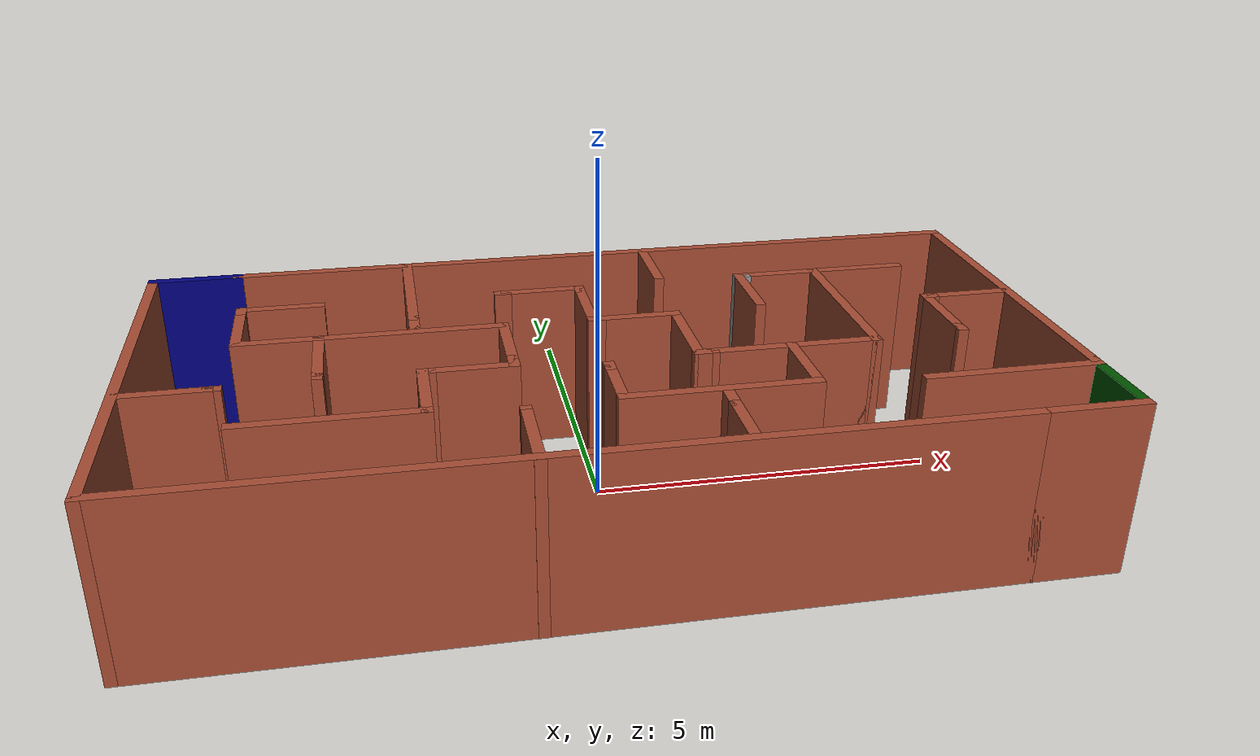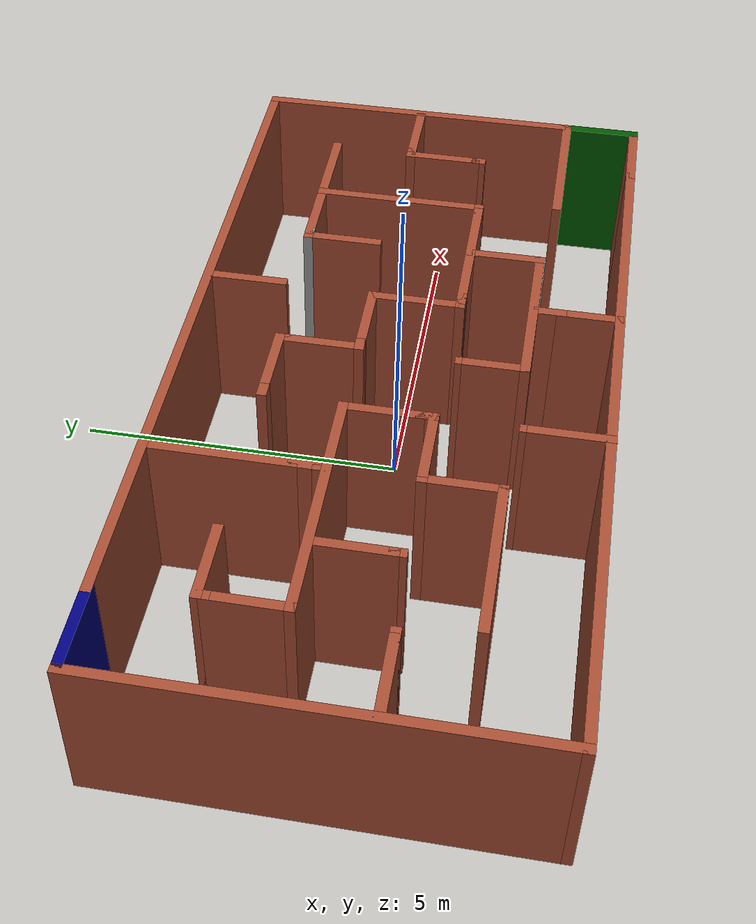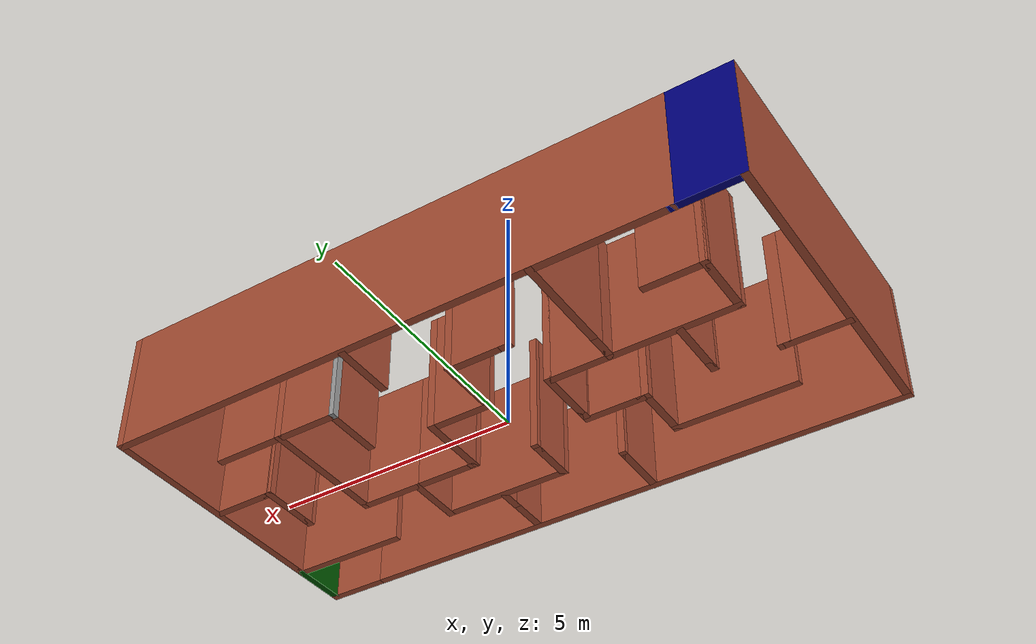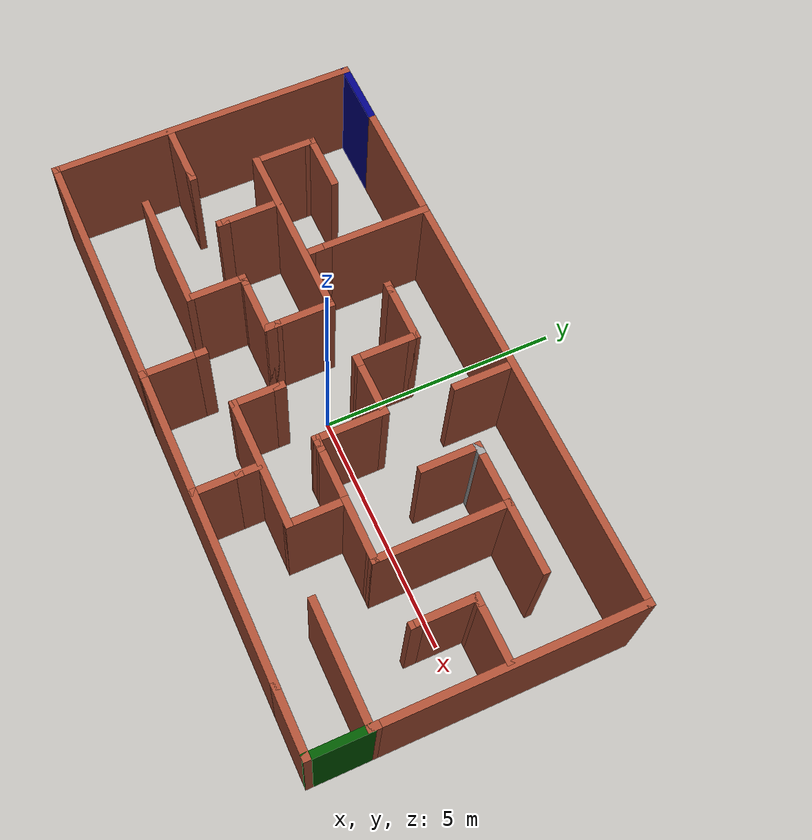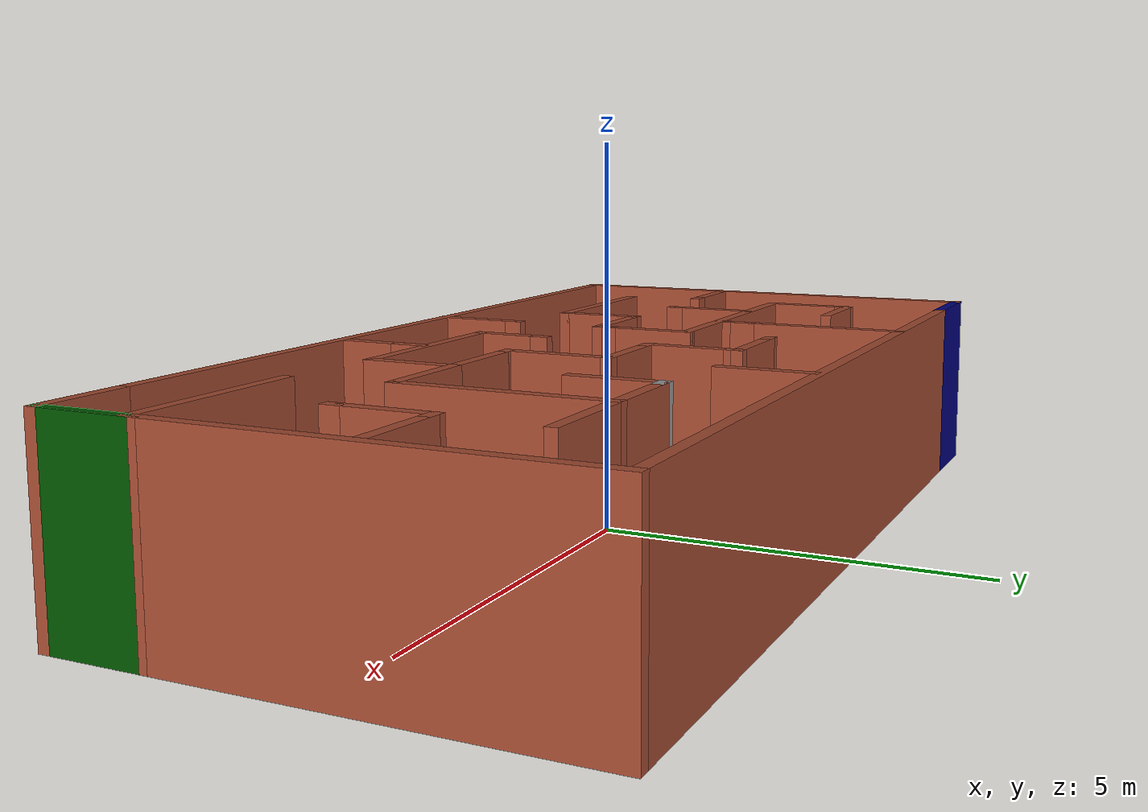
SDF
<?xml version='1.0'?>
<sdf version='1.6'>
  <model name='maze_simple'>
    <pose frame=''>0.016982 0.008977 0 0 -0 0</pose>
    <link name='Wall_100'>
      <collision name='Wall_100_Collision'>
        <geometry>
          <box>
            <size>0.25 0.15 2.5</size>
          </box>
        </geometry>
        <pose frame=''>0 0 1.25 0 -0 0</pose>
      </collision>
      <visual name='Wall_100_Visual'>
        <pose frame=''>0 0 1.25 0 -0 0</pose>
        <geometry>
          <box>
            <size>0.25 0.15 2.5</size>
          </box>
        </geometry>
        <material>
          <script>
            <uri>file://media/materials/scripts/gazebo.material</uri>
            <name>Gazebo/Bricks</name>
          </script>
          <ambient>1 1 1 1</ambient>
        </material>
      </visual>
      <pose frame=''>-1.13318 1.78039 0 0 -0 3.14159</pose>
    </link>
    <link name='Wall_102'>
      <collision name='Wall_102_Collision'>
        <geometry>
          <box>
            <size>1.25 0.15 2.5</size>
          </box>
        </geometry>
        <pose frame=''>0 0 1.25 0 -0 0</pose>
      </collision>
      <visual name='Wall_102_Visual'>
        <pose frame=''>0 0 1.25 0 -0 0</pose>
        <geometry>
          <box>
            <size>1.25 0.15 2.5</size>
          </box>
        </geometry>
        <material>
          <script>
            <uri>file://media/materials/scripts/gazebo.material</uri>
            <name>Gazebo/Bricks</name>
          </script>
          <ambient>1 1 1 1</ambient>
        </material>
      </visual>
      <pose frame=''>3.06682 -0.769606 0 0 -0 0</pose>
    </link>
    <link name='Wall_103'>
      <collision name='Wall_103_Collision'>
        <geometry>
          <box>
            <size>0.25 0.15 2.5</size>
          </box>
        </geometry>
        <pose frame=''>0 0 1.25 0 -0 0</pose>
      </collision>
      <visual name='Wall_103_Visual'>
        <pose frame=''>0 0 1.25 0 -0 0</pose>
        <geometry>
          <box>
            <size>0.25 0.15 2.5</size>
          </box>
        </geometry>
        <material>
          <script>
            <uri>file://media/materials/scripts/gazebo.material</uri>
            <name>Gazebo/Bricks</name>
          </script>
          <ambient>1 1 1 1</ambient>
        </material>
      </visual>
      <pose frame=''>3.66682 -0.769606 0 0 -0 0</pose>
    </link>
    <link name='Wall_104'>
      <collision name='Wall_104_Collision'>
        <geometry>
          <box>
            <size>2.75 0.15 2.5</size>
          </box>
        </geometry>
        <pose frame=''>0 0 1.25 0 -0 0</pose>
      </collision>
      <visual name='Wall_104_Visual'>
        <pose frame=''>0 0 1.25 0 -0 0</pose>
        <geometry>
          <box>
            <size>2.75 0.15 2.5</size>
          </box>
        </geometry>
        <material>
          <script>
            <uri>file://media/materials/scripts/gazebo.material</uri>
            <name>Gazebo/Bricks</name>
          </script>
          <ambient>1 1 1 1</ambient>
        </material>
      </visual>
      <pose frame=''>3.71682 0.530394 0 0 -0 1.5708</pose>
    </link>
    <link name='Wall_105'>
      <collision name='Wall_105_Collision'>
        <geometry>
          <box>
            <size>1.25 0.15 2.5</size>
          </box>
        </geometry>
        <pose frame=''>0 0 1.25 0 -0 0</pose>
      </collision>
      <visual name='Wall_105_Visual'>
        <pose frame=''>0 0 1.25 0 -0 0</pose>
        <geometry>
          <box>
            <size>1.25 0.15 2.5</size>
          </box>
        </geometry>
        <material>
          <script>
            <uri>file://media/materials/scripts/gazebo.material</uri>
            <name>Gazebo/Bricks</name>
          </script>
          <ambient>1 1 1 1</ambient>
        </material>
      </visual>
      <pose frame=''>3.16682 1.83039 0 0 -0 3.14159</pose>
    </link>
    <link name='Wall_106'>
      <collision name='Wall_106_Collision'>
        <geometry>
          <box>
            <size>0.25 0.15 2.5</size>
          </box>
        </geometry>
        <pose frame=''>0 0 1.25 0 -0 0</pose>
      </collision>
      <visual name='Wall_106_Visual'>
        <pose frame=''>0 0 1.25 0 -0 0</pose>
        <geometry>
          <box>
            <size>0.25 0.15 2.5</size>
          </box>
        </geometry>
        <material>
          <script>
            <uri>file://media/materials/scripts/gazebo.material</uri>
            <name>Gazebo/Grey</name>
          </script>
          <ambient>1 1 1 1</ambient>
        </material>
      </visual>
      <pose frame=''>2.56682 1.83039 0 0 -0 3.14159</pose>
    </link>
    <link name='Wall_107'>
      <collision name='Wall_107_Collision'>
        <geometry>
          <box>
            <size>1.25 0.15 2.5</size>
          </box>
        </geometry>
        <pose frame=''>0 0 1.25 0 -0 0</pose>
      </collision>
      <visual name='Wall_107_Visual'>
        <pose frame=''>0 0 1.25 0 -0 0</pose>
        <geometry>
          <box>
            <size>1.25 0.15 2.5</size>
          </box>
        </geometry>
        <material>
          <script>
            <uri>file://media/materials/scripts/gazebo.material</uri>
            <name>Gazebo/Bricks</name>
          </script>
          <ambient>1 1 1 1</ambient>
        </material>
      </visual>
      <pose frame=''>2.51682 1.28039 0 0 0 -1.5708</pose>
    </link>
    <link name='Wall_109'>
      <collision name='Wall_109_Collision'>
        <geometry>
          <box>
            <size>1.5 0.15 2.5</size>
          </box>
        </geometry>
        <pose frame=''>0 0 1.25 0 -0 0</pose>
      </collision>
      <visual name='Wall_109_Visual'>
        <pose frame=''>0 0 1.25 0 -0 0</pose>
        <geometry>
          <box>
            <size>1.5 0.15 2.5</size>
          </box>
        </geometry>
        <material>
          <script>
            <uri>file://media/materials/scripts/gazebo.material</uri>
            <name>Gazebo/Bricks</name>
          </script>
          <ambient>1 1 1 1</ambient>
        </material>
      </visual>
      <pose frame=''>4.39182 1.83039 0 0 -0 0</pose>
    </link>
    <link name='Wall_111'>
      <collision name='Wall_111_Collision'>
        <geometry>
          <box>
            <size>1.25 0.15 2.5</size>
          </box>
        </geometry>
        <pose frame=''>0 0 1.25 0 -0 0</pose>
      </collision>
      <visual name='Wall_111_Visual'>
        <pose frame=''>0 0 1.25 0 -0 0</pose>
        <geometry>
          <box>
            <size>1.25 0.15 2.5</size>
          </box>
        </geometry>
        <material>
          <script>
            <uri>file://media/materials/scripts/gazebo.material</uri>
            <name>Gazebo/Bricks</name>
          </script>
          <ambient>1 1 1 1</ambient>
        </material>
      </visual>
      <pose frame=''>5.67175 0.542885 0 0 -0 3.14159</pose>
    </link>
    <link name='Wall_112'>
      <collision name='Wall_112_Collision'>
        <geometry>
          <box>
            <size>0.25 0.15 2.5</size>
          </box>
        </geometry>
        <pose frame=''>0 0 1.25 0 -0 0</pose>
      </collision>
      <visual name='Wall_112_Visual'>
        <pose frame=''>0 0 1.25 0 -0 0</pose>
        <geometry>
          <box>
            <size>0.25 0.15 2.5</size>
          </box>
        </geometry>
        <material>
          <script>
            <uri>file://media/materials/scripts/gazebo.material</uri>
            <name>Gazebo/Bricks</name>
          </script>
          <ambient>1 1 1 1</ambient>
        </material>
      </visual>
      <pose frame=''>5.07175 0.542885 0 0 -0 3.14159</pose>
    </link>
    <link name='Wall_113'>
      <collision name='Wall_113_Collision'>
        <geometry>
          <box>
            <size>1.25 0.15 2.5</size>
          </box>
        </geometry>
        <pose frame=''>0 0 1.25 0 -0 0</pose>
      </collision>
      <visual name='Wall_113_Visual'>
        <pose frame=''>0 0 1.25 0 -0 0</pose>
        <geometry>
          <box>
            <size>1.25 0.15 2.5</size>
          </box>
        </geometry>
        <material>
          <script>
            <uri>file://media/materials/scripts/gazebo.material</uri>
            <name>Gazebo/Bricks</name>
          </script>
          <ambient>1 1 1 1</ambient>
        </material>
      </visual>
      <pose frame=''>5.02175 -0.007115 0 0 0 -1.5708</pose>
    </link>
    <link name='Wall_114'>
      <collision name='Wall_114_Collision'>
        <geometry>
          <box>
            <size>0.25 0.15 2.5</size>
          </box>
        </geometry>
        <pose frame=''>0 0 1.25 0 -0 0</pose>
      </collision>
      <visual name='Wall_114_Visual'>
        <pose frame=''>0 0 1.25 0 -0 0</pose>
        <geometry>
          <box>
            <size>0.25 0.15 2.5</size>
          </box>
        </geometry>
        <material>
          <script>
            <uri>file://media/materials/scripts/gazebo.material</uri>
            <name>Gazebo/Bricks</name>
          </script>
          <ambient>1 1 1 1</ambient>
        </material>
      </visual>
      <pose frame=''>5.02175 -0.607115 0 0 0 -1.5708</pose>
    </link>
    <link name='Wall_140'>
      <collision name='Wall_140_Collision'>
        <geometry>
          <box>
            <size>6.5 0.15 2.5</size>
          </box>
        </geometry>
        <pose frame=''>0 0 1.25 0 -0 0</pose>
      </collision>
      <visual name='Wall_140_Visual'>
        <pose frame=''>0 0 1.25 0 -0 0</pose>
        <geometry>
          <box>
            <size>6.5 0.15 2.5</size>
          </box>
        </geometry>
        <material>
          <script>
            <uri>file://media/materials/scripts/gazebo.material</uri>
            <name>Gazebo/Bricks</name>
          </script>
          <ambient>1 1 1 1</ambient>
        </material>
      </visual>
      <pose frame=''>-6.3 0.002046 0 0 -0 1.5708</pose>
    </link>
    <link name='Wall_142'>
      <collision name='Wall_142_Collision'>
        <geometry>
          <box>
            <size>1.25 0.15 2.5</size>
          </box>
        </geometry>
        <pose frame=''>0 0 1.25 0 -0 0</pose>
      </collision>
      <visual name='Wall_142_Visual'>
        <pose frame=''>0 0 1.25 0 -0 0</pose>
        <geometry>
          <box>
            <size>1.25 0.15 2.5</size>
          </box>
        </geometry>
        <material>
          <script>
            <uri>file://media/materials/scripts/gazebo.material</uri>
            <name>Gazebo/Bricks</name>
          </script>
          <ambient>1 1 1 1</ambient>
        </material>
      </visual>
      <pose frame=''>-1.26436 -2.62705 0 0 -0 1.5708</pose>
    </link>
    <link name='Wall_143'>
      <collision name='Wall_143_Collision'>
        <geometry>
          <box>
            <size>0.25 0.15 2.5</size>
          </box>
        </geometry>
        <pose frame=''>0 0 1.25 0 -0 0</pose>
      </collision>
      <visual name='Wall_143_Visual'>
        <pose frame=''>0 0 1.25 0 -0 0</pose>
        <geometry>
          <box>
            <size>0.25 0.15 2.5</size>
          </box>
        </geometry>
        <material>
          <script>
            <uri>file://media/materials/scripts/gazebo.material</uri>
            <name>Gazebo/Bricks</name>
          </script>
          <ambient>1 1 1 1</ambient>
        </material>
      </visual>
      <pose frame=''>-1.26436 -2.02705 0 0 -0 1.5708</pose>
    </link>
    <link name='Wall_145'>
      <collision name='Wall_145_Collision'>
        <geometry>
          <box>
            <size>1 0.15 2.5</size>
          </box>
        </geometry>
        <pose frame=''>0 0 1.25 0 -0 0</pose>
      </collision>
      <visual name='Wall_145_Visual'>
        <pose frame=''>0 0 1.25 0 -0 0</pose>
        <geometry>
          <box>
            <size>1 0.15 2.5</size>
          </box>
        </geometry>
        <material>
          <script>
            <uri>file://media/materials/scripts/gazebo.material</uri>
            <name>Gazebo/Bricks</name>
          </script>
          <ambient>1 1 1 1</ambient>
        </material>
      </visual>
      <pose frame=''>1.29548 -2.72328 0 0 -0 1.5708</pose>
    </link>
    <link name='Wall_147'>
      <collision name='Wall_147_Collision'>
        <geometry>
          <box>
            <size>0.5 0.15 2.5</size>
          </box>
        </geometry>
        <pose frame=''>0 0 1.25 0 -0 0</pose>
      </collision>
      <visual name='Wall_147_Visual'>
        <pose frame=''>0 0 1.25 0 -0 0</pose>
        <geometry>
          <box>
            <size>0.5 0.15 2.5</size>
          </box>
        </geometry>
        <material>
          <script>
            <uri>file://media/materials/scripts/gazebo.material</uri>
            <name>Gazebo/Bricks</name>
          </script>
          <ambient>1 1 1 1</ambient>
        </material>
      </visual>
      <pose frame=''>1.29548 -2.12328 0 0 -0 1.5708</pose>
    </link>
    <link name='Wall_149'>
      <collision name='Wall_149_Collision'>
        <geometry>
          <box>
            <size>2.7 0.15 2.5</size>
          </box>
        </geometry>
        <pose frame=''>0 0 1.25 0 -0 0</pose>
      </collision>
      <visual name='Wall_149_Visual'>
        <pose frame=''>0 0 1.25 0 -0 0</pose>
        <geometry>
          <box>
            <size>2.7 0.15 2.5</size>
          </box>
        </geometry>
        <material>
          <script>
            <uri>file://media/materials/scripts/gazebo.material</uri>
            <name>Gazebo/Bricks</name>
          </script>
          <ambient>1 1 1 1</ambient>
        </material>
      </visual>
      <pose frame=''>1.24182 -1.86961 0 0 -0 0</pose>
    </link>
    <link name='Wall_151'>
      <collision name='Wall_151_Collision'>
        <geometry>
          <box>
            <size>2.25 0.15 2.5</size>
          </box>
        </geometry>
        <pose frame=''>0 0 1.25 0 -0 0</pose>
      </collision>
      <visual name='Wall_151_Visual'>
        <pose frame=''>0 0 1.25 0 -0 0</pose>
        <geometry>
          <box>
            <size>2.25 0.15 2.5</size>
          </box>
        </geometry>
        <material>
          <script>
            <uri>file://media/materials/scripts/gazebo.material</uri>
            <name>Gazebo/Bricks</name>
          </script>
          <ambient>1 1 1 1</ambient>
        </material>
      </visual>
      <pose frame=''>-2.48197 2.11983 0 0 0 -1.5708</pose>
    </link>
    <link name='Wall_153'>
      <collision name='Wall_153_Collision'>
        <geometry>
          <box>
            <size>0.5 0.15 2.5</size>
          </box>
        </geometry>
        <pose frame=''>0 0 1.25 0 -0 0</pose>
      </collision>
      <visual name='Wall_153_Visual'>
        <pose frame=''>0 0 1.25 0 -0 0</pose>
        <geometry>
          <box>
            <size>0.5 0.15 2.5</size>
          </box>
        </geometry>
        <material>
          <script>
            <uri>file://media/materials/scripts/gazebo.material</uri>
            <name>Gazebo/Bricks</name>
          </script>
          <ambient>1 1 1 1</ambient>
        </material>
      </visual>
      <pose frame=''>-2.48197 0.894825 0 0 0 -1.5708</pose>
    </link>
    <link name='Wall_154'>
      <collision name='Wall_154_Collision'>
        <geometry>
          <box>
            <size>0.25 0.15 2.5</size>
          </box>
        </geometry>
        <pose frame=''>0 0 1.25 0 -0 0</pose>
      </collision>
      <visual name='Wall_154_Visual'>
        <pose frame=''>0 0 1.25 0 -0 0</pose>
        <geometry>
          <box>
            <size>0.25 0.15 2.5</size>
          </box>
        </geometry>
        <material>
          <script>
            <uri>file://media/materials/scripts/gazebo.material</uri>
            <name>Gazebo/Bricks</name>
          </script>
          <ambient>1 1 1 1</ambient>
        </material>
      </visual>
      <pose frame=''>-2.48197 0.669825 0 0 0 -1.5708</pose>
    </link>
    <link name='Wall_156'>
      <collision name='Wall_156_Collision'>
        <geometry>
          <box>
            <size>3.8 0.15 2.5</size>
          </box>
        </geometry>
        <pose frame=''>0 0 1.25 0 -0 0</pose>
      </collision>
      <visual name='Wall_156_Visual'>
        <pose frame=''>0 0 1.25 0 -0 0</pose>
        <geometry>
          <box>
            <size>3.8 0.15 2.5</size>
          </box>
        </geometry>
        <material>
          <script>
            <uri>file://media/materials/scripts/gazebo.material</uri>
            <name>Gazebo/Bricks</name>
          </script>
          <ambient>1 1 1 1</ambient>
        </material>
      </visual>
      <pose frame=''>-3.07995 0.598486 0 0 -0 0</pose>
    </link>
    <link name='Wall_160'>
      <collision name='Wall_160_Collision'>
        <geometry>
          <box>
            <size>1.25 0.15 2.5</size>
          </box>
        </geometry>
        <pose frame=''>0 0 1.25 0 -0 0</pose>
      </collision>
      <visual name='Wall_160_Visual'>
        <pose frame=''>0 0 1.25 0 -0 0</pose>
        <geometry>
          <box>
            <size>1.25 0.15 2.5</size>
          </box>
        </geometry>
        <material>
          <script>
            <uri>file://media/materials/scripts/gazebo.material</uri>
            <name>Gazebo/Bricks</name>
          </script>
          <ambient>1 1 1 1</ambient>
        </material>
      </visual>
      <pose frame=''>1.28589 2.55271 0 0 0 -1.5708</pose>
    </link>
    <link name='Wall_162'>
      <collision name='Wall_162_Collision'>
        <geometry>
          <box>
            <size>11.5 0.15 2.5</size>
          </box>
        </geometry>
        <pose frame=''>0 0 1.25 0 -0 0</pose>
      </collision>
      <visual name='Wall_162_Visual'>
        <pose frame=''>0 0 1.25 0 -0 0</pose>
        <geometry>
          <box>
            <size>11.5 0.15 2.5</size>
          </box>
        </geometry>
        <material>
          <script>
            <uri>file://media/materials/scripts/gazebo.material</uri>
            <name>Gazebo/Bricks</name>
          </script>
          <ambient>1 1 1 1</ambient>
        </material>
      </visual>
      <pose frame=''>0.625 3.17705 0 0 -0 3.14159</pose>
    </link>
    <link name='Wall_163'>
      <collision name='Wall_163_Collision'>
        <geometry>
          <box>
            <size>1.4 0.15 2.5</size>
          </box>
        </geometry>
        <pose frame=''>0 0 1.25 0 -0 0</pose>
      </collision>
      <visual name='Wall_163_Visual'>
        <pose frame=''>0 0 1.25 0 -0 0</pose>
        <geometry>
          <box>
            <size>1.4 0.15 2.5</size>
          </box>
        </geometry>
        <material>
          <script>
            <uri>file://media/materials/scripts/gazebo.material</uri>
            <name>Gazebo/Grey</name>
          </script>
          <ambient>0 0 0.498039 1</ambient>
        </material>
      </visual>
      <pose frame=''>-5.675 3.17705 0 0 -0 3.14159</pose>
    </link>
    <link name='Wall_165'>
      <collision name='Wall_165_Collision'>
        <geometry>
          <box>
            <size>11.5 0.15 2.5</size>
          </box>
        </geometry>
        <pose frame=''>0 0 1.25 0 -0 0</pose>
      </collision>
      <visual name='Wall_165_Visual'>
        <pose frame=''>0 0 1.25 0 -0 0</pose>
        <geometry>
          <box>
            <size>11.5 0.15 2.5</size>
          </box>
        </geometry>
        <material>
          <script>
            <uri>file://media/materials/scripts/gazebo.material</uri>
            <name>Gazebo/Bricks</name>
          </script>
          <ambient>1 1 1 1</ambient>
        </material>
      </visual>
      <pose frame=''>-0.625 -3.17295 0 0 -0 0</pose>
    </link>
    <link name='Wall_166'>
      <collision name='Wall_166_Collision'>
        <geometry>
          <box>
            <size>1.4 0.15 2.5</size>
          </box>
        </geometry>
        <pose frame=''>0 0 1.25 0 -0 0</pose>
      </collision>
      <visual name='Wall_166_Visual'>
        <pose frame=''>0 0 1.25 0 -0 0</pose>
        <geometry>
          <box>
            <size>1.4 0.15 2.5</size>
          </box>
        </geometry>
        <material>
          <script>
            <uri>file://media/materials/scripts/gazebo.material</uri>
            <name>Gazebo/Bricks</name>
          </script>
          <ambient>1 1 1 1</ambient>
        </material>
      </visual>
      <pose frame=''>5.675 -3.17295 0 0 -0 0</pose>
    </link>
    <link name='Wall_172'>
      <collision name='Wall_172_Collision'>
        <geometry>
          <box>
            <size>5.25 0.15 2.5</size>
          </box>
        </geometry>
        <pose frame=''>0 0 1.25 0 -0 0</pose>
      </collision>
      <visual name='Wall_172_Visual'>
        <pose frame=''>0 0 1.25 0 -0 0</pose>
        <geometry>
          <box>
            <size>5.25 0.15 2.5</size>
          </box>
        </geometry>
        <material>
          <script>
            <uri>file://media/materials/scripts/gazebo.material</uri>
            <name>Gazebo/Bricks</name>
          </script>
          <ambient>1 1 1 1</ambient>
        </material>
      </visual>
      <pose frame=''>6.3 0.627046 0 0 0 -1.5708</pose>
    </link>
    <link name='Wall_173'>
      <collision name='Wall_173_Collision'>
        <geometry>
          <box>
            <size>0.25 0.15 2.5</size>
          </box>
        </geometry>
        <pose frame=''>0 0 1.25 0 -0 0</pose>
      </collision>
      <visual name='Wall_173_Visual'>
        <pose frame=''>0 0 1.25 0 -0 0</pose>
        <geometry>
          <box>
            <size>0.25 0.15 2.5</size>
          </box>
        </geometry>
        <material>
          <script>
            <uri>file://media/materials/scripts/gazebo.material</uri>
            <name>Gazebo/Bricks</name>
          </script>
          <ambient>1 1 1 1</ambient>
        </material>
      </visual>
      <pose frame=''>6.3 -1.97295 0 0 0 -1.5708</pose>
    </link>
    <link name='Wall_174'>
      <collision name='Wall_174_Collision'>
        <geometry>
          <box>
            <size>1.3 0.15 2.5</size>
          </box>
        </geometry>
        <pose frame=''>0 0 1.25 0 -0 0</pose>
      </collision>
      <visual name='Wall_174_Visual'>
        <pose frame=''>0 0 1.25 0 -0 0</pose>
        <geometry>
          <box>
            <size>1.3 0.15 2.5</size>
          </box>
        </geometry>
        <material>
          <script>
            <uri>file://media/materials/scripts/gazebo.material</uri>
            <name>Gazebo/Grey</name>
          </script>
          <ambient>0 0.333333 0 1</ambient>
        </material>
      </visual>
      <pose frame=''>6.3 -2.59795 0 0 0 -1.5708</pose>
    </link>
    <link name='Wall_176'>
      <collision name='Wall_176_Collision'>
        <geometry>
          <box>
            <size>2.5 0.15 2.5</size>
          </box>
        </geometry>
        <pose frame=''>0 0 1.25 0 -0 0</pose>
      </collision>
      <visual name='Wall_176_Visual'>
        <pose frame=''>0 0 1.25 0 -0 0</pose>
        <geometry>
          <box>
            <size>2.5 0.15 2.5</size>
          </box>
        </geometry>
        <material>
          <script>
            <uri>file://media/materials/scripts/gazebo.material</uri>
            <name>Gazebo/Bricks</name>
          </script>
          <ambient>1 1 1 1</ambient>
        </material>
      </visual>
      <pose frame=''>5.125 -2.02295 0 0 -0 3.14159</pose>
    </link>
    <link name='Wall_52'>
      <collision name='Wall_52_Collision'>
        <geometry>
          <box>
            <size>1.25 0.15 2.5</size>
          </box>
        </geometry>
        <pose frame=''>0 0 1.25 0 -0 0</pose>
      </collision>
      <visual name='Wall_52_Visual'>
        <pose frame=''>0 0 1.25 0 -0 0</pose>
        <geometry>
          <box>
            <size>1.25 0.15 2.5</size>
          </box>
        </geometry>
        <material>
          <script>
            <uri>file://media/materials/scripts/gazebo.material</uri>
            <name>Gazebo/Bricks</name>
          </script>
          <ambient>1 1 1 1</ambient>
        </material>
      </visual>
      <pose frame=''>-5.69193 -0.74058 0 0 -0 0</pose>
    </link>
    <link name='Wall_53'>
      <collision name='Wall_53_Collision'>
        <geometry>
          <box>
            <size>0.25 0.15 2.5</size>
          </box>
        </geometry>
        <pose frame=''>0 0 1.25 0 -0 0</pose>
      </collision>
      <visual name='Wall_53_Visual'>
        <pose frame=''>0 0 1.25 0 -0 0</pose>
        <geometry>
          <box>
            <size>0.25 0.15 2.5</size>
          </box>
        </geometry>
        <material>
          <script>
            <uri>file://media/materials/scripts/gazebo.material</uri>
            <name>Gazebo/Bricks</name>
          </script>
          <ambient>1 1 1 1</ambient>
        </material>
      </visual>
      <pose frame=''>-5.09193 -0.74058 0 0 -0 0</pose>
    </link>
    <link name='Wall_61'>
      <collision name='Wall_61_Collision'>
        <geometry>
          <box>
            <size>1.25 0.15 2.5</size>
          </box>
        </geometry>
        <pose frame=''>0 0 1.25 0 -0 0</pose>
      </collision>
      <visual name='Wall_61_Visual'>
        <pose frame=''>0 0 1.25 0 -0 0</pose>
        <geometry>
          <box>
            <size>1.25 0.15 2.5</size>
          </box>
        </geometry>
        <material>
          <script>
            <uri>file://media/materials/scripts/gazebo.material</uri>
            <name>Gazebo/Bricks</name>
          </script>
          <ambient>1 1 1 1</ambient>
        </material>
      </visual>
      <pose frame=''>-4.90495 1.14849 0 0 -0 1.5708</pose>
    </link>
    <link name='Wall_62'>
      <collision name='Wall_62_Collision'>
        <geometry>
          <box>
            <size>0.25 0.15 2.5</size>
          </box>
        </geometry>
        <pose frame=''>0 0 1.25 0 -0 0</pose>
      </collision>
      <visual name='Wall_62_Visual'>
        <pose frame=''>0 0 1.25 0 -0 0</pose>
        <geometry>
          <box>
            <size>0.25 0.15 2.5</size>
          </box>
        </geometry>
        <material>
          <script>
            <uri>file://media/materials/scripts/gazebo.material</uri>
            <name>Gazebo/Bricks</name>
          </script>
          <ambient>1 1 1 1</ambient>
        </material>
      </visual>
      <pose frame=''>-4.90495 1.74849 0 0 -0 1.5708</pose>
    </link>
    <link name='Wall_63'>
      <collision name='Wall_63_Collision'>
        <geometry>
          <box>
            <size>1.25 0.15 2.5</size>
          </box>
        </geometry>
        <pose frame=''>0 0 1.25 0 -0 0</pose>
      </collision>
      <visual name='Wall_63_Visual'>
        <pose frame=''>0 0 1.25 0 -0 0</pose>
        <geometry>
          <box>
            <size>1.25 0.15 2.5</size>
          </box>
        </geometry>
        <material>
          <script>
            <uri>file://media/materials/scripts/gazebo.material</uri>
            <name>Gazebo/Bricks</name>
          </script>
          <ambient>1 1 1 1</ambient>
        </material>
      </visual>
      <pose frame=''>-4.35495 1.79849 0 0 -0 0</pose>
    </link>
    <link name='Wall_65'>
      <collision name='Wall_65_Collision'>
        <geometry>
          <box>
            <size>1.25 0.15 2.5</size>
          </box>
        </geometry>
        <pose frame=''>0 0 1.25 0 -0 0</pose>
      </collision>
      <visual name='Wall_65_Visual'>
        <pose frame=''>0 0 1.25 0 -0 0</pose>
        <geometry>
          <box>
            <size>1.25 0.15 2.5</size>
          </box>
        </geometry>
        <material>
          <script>
            <uri>file://media/materials/scripts/gazebo.material</uri>
            <name>Gazebo/Bricks</name>
          </script>
          <ambient>1 1 1 1</ambient>
        </material>
      </visual>
      <pose frame=''>-3.79332 0.017373 0 0 0 -1.5708</pose>
    </link>
    <link name='Wall_66'>
      <collision name='Wall_66_Collision'>
        <geometry>
          <box>
            <size>0.25 0.15 2.5</size>
          </box>
        </geometry>
        <pose frame=''>0 0 1.25 0 -0 0</pose>
      </collision>
      <visual name='Wall_66_Visual'>
        <pose frame=''>0 0 1.25 0 -0 0</pose>
        <geometry>
          <box>
            <size>0.25 0.15 2.5</size>
          </box>
        </geometry>
        <material>
          <script>
            <uri>file://media/materials/scripts/gazebo.material</uri>
            <name>Gazebo/Bricks</name>
          </script>
          <ambient>1 1 1 1</ambient>
        </material>
      </visual>
      <pose frame=''>-3.79332 -0.582627 0 0 0 -1.5708</pose>
    </link>
    <link name='Wall_70'>
      <collision name='Wall_70_Collision'>
        <geometry>
          <box>
            <size>1.25 0.15 2.5</size>
          </box>
        </geometry>
        <pose frame=''>0 0 1.25 0 -0 0</pose>
      </collision>
      <visual name='Wall_70_Visual'>
        <pose frame=''>0 0 1.25 0 -0 0</pose>
        <geometry>
          <box>
            <size>1.25 0.15 2.5</size>
          </box>
        </geometry>
        <material>
          <script>
            <uri>file://media/materials/scripts/gazebo.material</uri>
            <name>Gazebo/Bricks</name>
          </script>
          <ambient>1 1 1 1</ambient>
        </material>
      </visual>
      <pose frame=''>-1.25495 0.048486 0 0 0 -1.5708</pose>
    </link>
    <link name='Wall_71'>
      <collision name='Wall_71_Collision'>
        <geometry>
          <box>
            <size>0.25 0.15 2.5</size>
          </box>
        </geometry>
        <pose frame=''>0 0 1.25 0 -0 0</pose>
      </collision>
      <visual name='Wall_71_Visual'>
        <pose frame=''>0 0 1.25 0 -0 0</pose>
        <geometry>
          <box>
            <size>0.25 0.15 2.5</size>
          </box>
        </geometry>
        <material>
          <script>
            <uri>file://media/materials/scripts/gazebo.material</uri>
            <name>Gazebo/Bricks</name>
          </script>
          <ambient>1 1 1 1</ambient>
        </material>
      </visual>
      <pose frame=''>-1.25495 -0.551513 0 0 0 -1.5708</pose>
    </link>
    <link name='Wall_72'>
      <collision name='Wall_72_Collision'>
        <geometry>
          <box>
            <size>0.25 0.15 2.5</size>
          </box>
        </geometry>
        <pose frame=''>0 0 1.25 0 -0 0</pose>
      </collision>
      <visual name='Wall_72_Visual'>
        <pose frame=''>0 0 1.25 0 -0 0</pose>
        <geometry>
          <box>
            <size>0.25 0.15 2.5</size>
          </box>
        </geometry>
        <material>
          <script>
            <uri>file://media/materials/scripts/gazebo.material</uri>
            <name>Gazebo/Bricks</name>
          </script>
          <ambient>1 1 1 1</ambient>
        </material>
      </visual>
      <pose frame=''>-1.25495 -0.651514 0 0 0 -1.5708</pose>
    </link>
    <link name='Wall_73'>
      <collision name='Wall_73_Collision'>
        <geometry>
          <box>
            <size>1.25 0.15 2.5</size>
          </box>
        </geometry>
        <pose frame=''>0 0 1.25 0 -0 0</pose>
      </collision>
      <visual name='Wall_73_Visual'>
        <pose frame=''>0 0 1.25 0 -0 0</pose>
        <geometry>
          <box>
            <size>1.25 0.15 2.5</size>
          </box>
        </geometry>
        <material>
          <script>
            <uri>file://media/materials/scripts/gazebo.material</uri>
            <name>Gazebo/Bricks</name>
          </script>
          <ambient>1 1 1 1</ambient>
        </material>
      </visual>
      <pose frame=''>-1.80495 -0.701514 0 0 -0 3.14159</pose>
    </link>
    <link name='Wall_74'>
      <collision name='Wall_74_Collision'>
        <geometry>
          <box>
            <size>0.25 0.15 2.5</size>
          </box>
        </geometry>
        <pose frame=''>0 0 1.25 0 -0 0</pose>
      </collision>
      <visual name='Wall_74_Visual'>
        <pose frame=''>0 0 1.25 0 -0 0</pose>
        <geometry>
          <box>
            <size>0.25 0.15 2.5</size>
          </box>
        </geometry>
        <material>
          <script>
            <uri>file://media/materials/scripts/gazebo.material</uri>
            <name>Gazebo/Bricks</name>
          </script>
          <ambient>1 1 1 1</ambient>
        </material>
      </visual>
      <pose frame=''>-2.40495 -0.701514 0 0 -0 3.14159</pose>
    </link>
    <link name='Wall_75'>
      <collision name='Wall_75_Collision'>
        <geometry>
          <box>
            <size>1.25 0.15 2.5</size>
          </box>
        </geometry>
        <pose frame=''>0 0 1.25 0 -0 0</pose>
      </collision>
      <visual name='Wall_75_Visual'>
        <pose frame=''>0 0 1.25 0 -0 0</pose>
        <geometry>
          <box>
            <size>1.25 0.15 2.5</size>
          </box>
        </geometry>
        <material>
          <script>
            <uri>file://media/materials/scripts/gazebo.material</uri>
            <name>Gazebo/Bricks</name>
          </script>
          <ambient>1 1 1 1</ambient>
        </material>
      </visual>
      <pose frame=''>-2.45495 -1.25151 0 0 0 -1.5708</pose>
    </link>
    <link name='Wall_76'>
      <collision name='Wall_76_Collision'>
        <geometry>
          <box>
            <size>2.5 0.15 2.5</size>
          </box>
        </geometry>
        <pose frame=''>0 0 1.25 0 -0 0</pose>
      </collision>
      <visual name='Wall_76_Visual'>
        <pose frame=''>0 0 1.25 0 -0 0</pose>
        <geometry>
          <box>
            <size>2.5 0.15 2.5</size>
          </box>
        </geometry>
        <material>
          <script>
            <uri>file://media/materials/scripts/gazebo.material</uri>
            <name>Gazebo/Bricks</name>
          </script>
          <ambient>1 1 1 1</ambient>
        </material>
      </visual>
      <pose frame=''>-3.62995 -1.80151 0 0 -0 3.14159</pose>
    </link>
    <link name='Wall_85'>
      <collision name='Wall_85_Collision'>
        <geometry>
          <box>
            <size>1 0.15 2.5</size>
          </box>
        </geometry>
        <pose frame=''>0 0 1.25 0 -0 0</pose>
      </collision>
      <visual name='Wall_85_Visual'>
        <pose frame=''>0 0 1.25 0 -0 0</pose>
        <geometry>
          <box>
            <size>1 0.15 2.5</size>
          </box>
        </geometry>
        <material>
          <script>
            <uri>file://media/materials/scripts/gazebo.material</uri>
            <name>Gazebo/Bricks</name>
          </script>
          <ambient>1 1 1 1</ambient>
        </material>
      </visual>
      <pose frame=''>-0.033178 -1.44461 0 0 -0 1.5708</pose>
    </link>
    <link name='Wall_86'>
      <collision name='Wall_86_Collision'>
        <geometry>
          <box>
            <size>0.25 0.15 2.5</size>
          </box>
        </geometry>
        <pose frame=''>0 0 1.25 0 -0 0</pose>
      </collision>
      <visual name='Wall_86_Visual'>
        <pose frame=''>0 0 1.25 0 -0 0</pose>
        <geometry>
          <box>
            <size>0.25 0.15 2.5</size>
          </box>
        </geometry>
        <material>
          <script>
            <uri>file://media/materials/scripts/gazebo.material</uri>
            <name>Gazebo/Bricks</name>
          </script>
          <ambient>1 1 1 1</ambient>
        </material>
      </visual>
      <pose frame=''>-0.033178 -0.969606 0 0 -0 1.5708</pose>
    </link>
    <link name='Wall_90'>
      <collision name='Wall_90_Collision'>
        <geometry>
          <box>
            <size>1.25 0.15 2.5</size>
          </box>
        </geometry>
        <pose frame=''>0 0 1.25 0 -0 0</pose>
      </collision>
      <visual name='Wall_90_Visual'>
        <pose frame=''>0 0 1.25 0 -0 0</pose>
        <geometry>
          <box>
            <size>1.25 0.15 2.5</size>
          </box>
        </geometry>
        <material>
          <script>
            <uri>file://media/materials/scripts/gazebo.material</uri>
            <name>Gazebo/Bricks</name>
          </script>
          <ambient>1 1 1 1</ambient>
        </material>
      </visual>
      <pose frame=''>2.51682 -1.31961 0 0 -0 1.5708</pose>
    </link>
    <link name='Wall_91'>
      <collision name='Wall_91_Collision'>
        <geometry>
          <box>
            <size>1.25 0.15 2.5</size>
          </box>
        </geometry>
        <pose frame=''>0 0 1.25 0 -0 0</pose>
      </collision>
      <visual name='Wall_91_Visual'>
        <pose frame=''>0 0 1.25 0 -0 0</pose>
        <geometry>
          <box>
            <size>1.25 0.15 2.5</size>
          </box>
        </geometry>
        <material>
          <script>
            <uri>file://media/materials/scripts/gazebo.material</uri>
            <name>Gazebo/Bricks</name>
          </script>
          <ambient>1 1 1 1</ambient>
        </material>
      </visual>
      <pose frame=''>1.96682 -0.769606 0 0 -0 3.14159</pose>
    </link>
    <link name='Wall_92'>
      <collision name='Wall_92_Collision'>
        <geometry>
          <box>
            <size>0.25 0.15 2.5</size>
          </box>
        </geometry>
        <pose frame=''>0 0 1.25 0 -0 0</pose>
      </collision>
      <visual name='Wall_92_Visual'>
        <pose frame=''>0 0 1.25 0 -0 0</pose>
        <geometry>
          <box>
            <size>0.25 0.15 2.5</size>
          </box>
        </geometry>
        <material>
          <script>
            <uri>file://media/materials/scripts/gazebo.material</uri>
            <name>Gazebo/Bricks</name>
          </script>
          <ambient>1 1 1 1</ambient>
        </material>
      </visual>
      <pose frame=''>1.36682 -0.769606 0 0 -0 3.14159</pose>
    </link>
    <link name='Wall_93'>
      <collision name='Wall_93_Collision'>
        <geometry>
          <box>
            <size>0.25 0.15 2.5</size>
          </box>
        </geometry>
        <pose frame=''>0 0 1.25 0 -0 0</pose>
      </collision>
      <visual name='Wall_93_Visual'>
        <pose frame=''>0 0 1.25 0 -0 0</pose>
        <geometry>
          <box>
            <size>0.25 0.15 2.5</size>
          </box>
        </geometry>
        <material>
          <script>
            <uri>file://media/materials/scripts/gazebo.material</uri>
            <name>Gazebo/Bricks</name>
          </script>
          <ambient>1 1 1 1</ambient>
        </material>
      </visual>
      <pose frame=''>1.26682 -0.769606 0 0 -0 3.14159</pose>
    </link>
    <link name='Wall_94'>
      <collision name='Wall_94_Collision'>
        <geometry>
          <box>
            <size>1.5 0.15 2.5</size>
          </box>
        </geometry>
        <pose frame=''>0 0 1.25 0 -0 0</pose>
      </collision>
      <visual name='Wall_94_Visual'>
        <pose frame=''>0 0 1.25 0 -0 0</pose>
        <geometry>
          <box>
            <size>1.5 0.15 2.5</size>
          </box>
        </geometry>
        <material>
          <script>
            <uri>file://media/materials/scripts/gazebo.material</uri>
            <name>Gazebo/Bricks</name>
          </script>
          <ambient>1 1 1 1</ambient>
        </material>
      </visual>
      <pose frame=''>1.21682 -0.094606 0 0 -0 1.5708</pose>
    </link>
    <link name='Wall_95'>
      <collision name='Wall_95_Collision'>
        <geometry>
          <box>
            <size>1.25 0.15 2.5</size>
          </box>
        </geometry>
        <pose frame=''>0 0 1.25 0 -0 0</pose>
      </collision>
      <visual name='Wall_95_Visual'>
        <pose frame=''>0 0 1.25 0 -0 0</pose>
        <geometry>
          <box>
            <size>1.25 0.15 2.5</size>
          </box>
        </geometry>
        <material>
          <script>
            <uri>file://media/materials/scripts/gazebo.material</uri>
            <name>Gazebo/Bricks</name>
          </script>
          <ambient>1 1 1 1</ambient>
        </material>
      </visual>
      <pose frame=''>0.666822 0.580394 0 0 -0 3.14159</pose>
    </link>
    <link name='Wall_96'>
      <collision name='Wall_96_Collision'>
        <geometry>
          <box>
            <size>0.25 0.15 2.5</size>
          </box>
        </geometry>
        <pose frame=''>0 0 1.25 0 -0 0</pose>
      </collision>
      <visual name='Wall_96_Visual'>
        <pose frame=''>0 0 1.25 0 -0 0</pose>
        <geometry>
          <box>
            <size>0.25 0.15 2.5</size>
          </box>
        </geometry>
        <material>
          <script>
            <uri>file://media/materials/scripts/gazebo.material</uri>
            <name>Gazebo/Bricks</name>
          </script>
          <ambient>1 1 1 1</ambient>
        </material>
      </visual>
      <pose frame=''>0.066822 0.580394 0 0 -0 3.14159</pose>
    </link>
    <link name='Wall_97'>
      <collision name='Wall_97_Collision'>
        <geometry>
          <box>
            <size>1.25 0.15 2.5</size>
          </box>
        </geometry>
        <pose frame=''>0 0 1.25 0 -0 0</pose>
      </collision>
      <visual name='Wall_97_Visual'>
        <pose frame=''>0 0 1.25 0 -0 0</pose>
        <geometry>
          <box>
            <size>1.25 0.15 2.5</size>
          </box>
        </geometry>
        <material>
          <script>
            <uri>file://media/materials/scripts/gazebo.material</uri>
            <name>Gazebo/Bricks</name>
          </script>
          <ambient>1 1 1 1</ambient>
        </material>
      </visual>
      <pose frame=''>0.016822 1.13039 0 0 -0 1.5708</pose>
    </link>
    <link name='Wall_98'>
      <collision name='Wall_98_Collision'>
        <geometry>
          <box>
            <size>0.25 0.15 2.5</size>
          </box>
        </geometry>
        <pose frame=''>0 0 1.25 0 -0 0</pose>
      </collision>
      <visual name='Wall_98_Visual'>
        <pose frame=''>0 0 1.25 0 -0 0</pose>
        <geometry>
          <box>
            <size>0.25 0.15 2.5</size>
          </box>
        </geometry>
        <material>
          <script>
            <uri>file://media/materials/scripts/gazebo.material</uri>
            <name>Gazebo/Bricks</name>
          </script>
          <ambient>1 1 1 1</ambient>
        </material>
      </visual>
      <pose frame=''>0.016822 1.73039 0 0 -0 1.5708</pose>
    </link>
    <link name='Wall_99'>
      <collision name='Wall_99_Collision'>
        <geometry>
          <box>
            <size>1.25 0.15 2.5</size>
          </box>
        </geometry>
        <pose frame=''>0 0 1.25 0 -0 0</pose>
      </collision>
      <visual name='Wall_99_Visual'>
        <pose frame=''>0 0 1.25 0 -0 0</pose>
        <geometry>
          <box>
            <size>1.25 0.15 2.5</size>
          </box>
        </geometry>
        <material>
          <script>
            <uri>file://media/materials/scripts/gazebo.material</uri>
            <name>Gazebo/Bricks</name>
          </script>
          <ambient>1 1 1 1</ambient>
        </material>
      </visual>
      <pose frame=''>-0.533178 1.78039 0 0 -0 3.14159</pose>
    </link>
    <static>1</static>
  </model>
</sdf>
